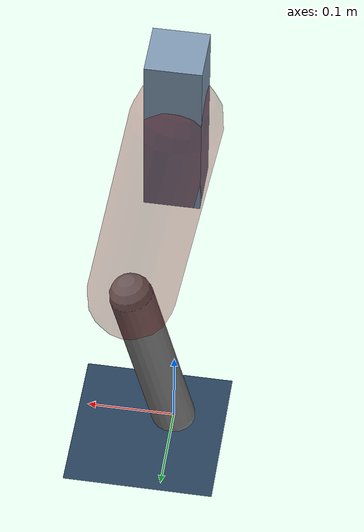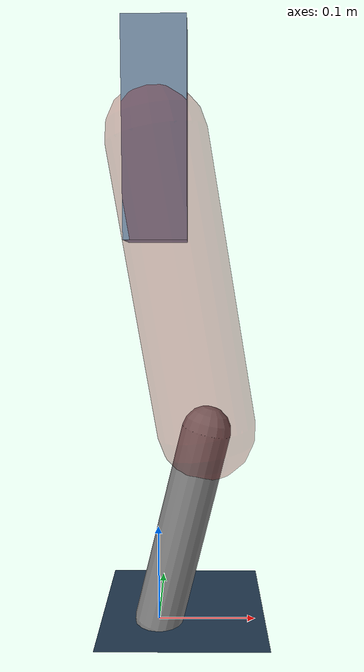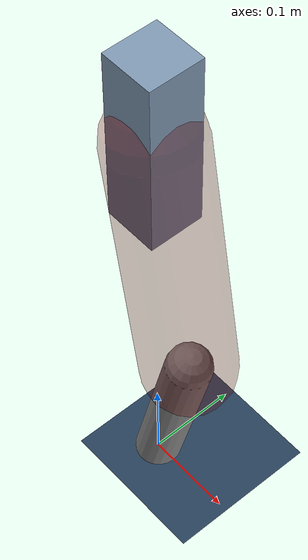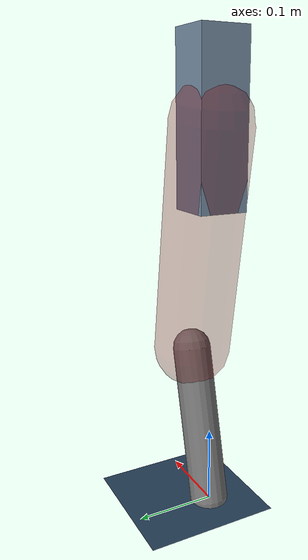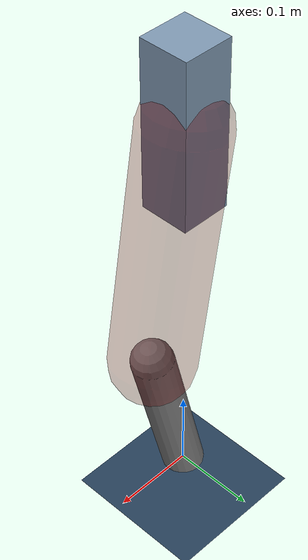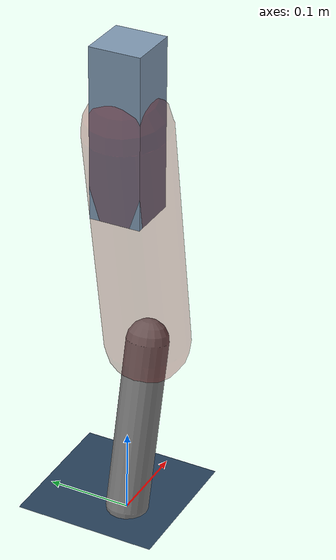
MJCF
<mujoco model="Hopper2D">
	<compiler inertiafromgeom="true" angle="radian" />
	<option timestep="0.001" integrator="implicit" cone="elliptic" solver="Newton" tolerance="1e-10" />

	<default>
		<geom contype="1" conaffinity="1" condim="3" friction="2 0.005 0.0001" solref="0.005 1" />
		<joint limited="true" damping="0.1" />
	</default>

	<asset>
		<texture name="skybox" type="skybox" builtin="gradient" rgb1=".4 .6 .8" rgb2="0 0 0" width="800" height="800" />
		<texture name="grid" type="2d" builtin="checker" rgb1=".1 .2 .3" rgb2=".2 .3 .4" width="300" height="300" mark="edge" markrgb=".2 .3 .4" />
		<material name="ground" texture="grid" texrepeat="1 1" texuniform="true" reflectance="0.1" />
		<material name="leg" rgba="0.5 0.6 0.7 1" />
	</asset>

	<worldbody>

		<geom name="floor" type="plane" size="5 5 0.25" material="ground" />

		<light directional="false" diffuse="0.8 0.8 0.8" specular="0.3 0.3 0.3" pos="0 0 2" dir="0 0 -1" />
		<light mode="targetbodycom" target="base" directional="false" diffuse="0.8 0.8 0.8" specular="0.3 0.3 0.3" pos="0 0 2" dir="0 0 -1" />

		<camera name="fixed" pos="0 -2 1" xyaxes="1 0 0 0 0 1" />
		<camera name="tracking" mode="trackcom" pos="0 -3 1" />

		<body name="root" pos="0 0 0.4905373024653581">
			<joint name="slide_x" type="slide" axis="1 0 0" range="-100 100" />
			<joint name="slide_z" type="slide" axis="0 0 1" range="0 10" />

			<body name="base" pos="0 0 0">
				<geom name="torso" type="box" size="0.03 0.03 0.1" mass="2.116" material="leg" />

				<body name="link1" pos="0 0 0" euler="0 1.4025623235416522 0">
					<joint type="hinge" axis="0 -1 0" pos="0 0 0" name="hinge1" limited="true" range="-3.14 3.14" stiffness="0" damping="0.1" />
					<geom name="thigh" type="capsule" fromto="0 0 0 0.2927772543812204 0 0" size="0.05" rgba="0.5 0 0 0.3" mass="0.969298586829295" />

					<body name="link2" pos="0.2927772543812204 0 0" euler="0 0.40644042453658746 0">
						<joint type="hinge" axis="0 -1 0" pos="0 0 0" name="hinge2" limited="true" range="-3.14 3.14" stiffness="0" damping="0.1" />
						<geom name="shank" type="capsule" fromto="0 0 0 0.20776004808413767 0 0" size="0.025" mass="0.40740803846731016" />

					</body>
				</body>
			</body>
		</body>
	</worldbody>

	<actuator>
		<motor name="torque1" joint="hinge1" ctrlrange="-60.65177898985882 60.65177898985882" ctrllimited="true" gear="1" />
		<motor name="torque2" joint="hinge2" ctrlrange="-105.27304116322807 105.27304116322807" ctrllimited="true" gear="1" />
	</actuator>
</mujoco>
